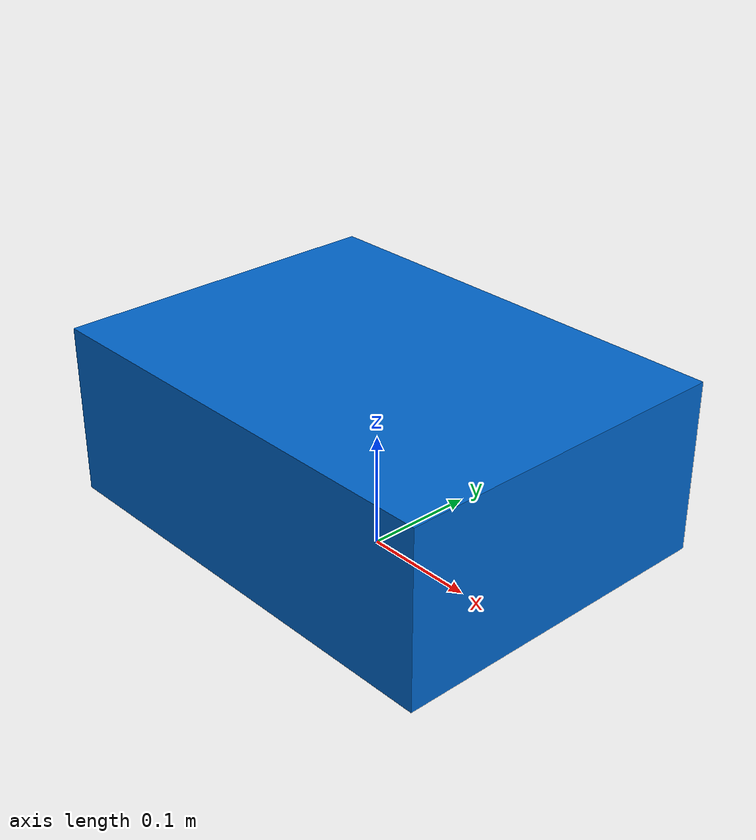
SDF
<?xml version="1.0" ?>
<sdf version="1.8">
  <model name="diff_drive_robot">
    <link name="chassis">
      <pose>0 0 0.1 0 0 0</pose>
      <inertial>
        <mass>1.14395</mass>
        <inertia>
          <ixx>0.095329</ixx>
          <ixy>0</ixy>
          <ixz>0</ixz>
          <iyy>0.381317</iyy>
          <iyz>0</iyz>
          <izz>0.476646</izz>
        </inertia>
      </inertial>
      <visual name="visual">
        <geometry>
          <box>
            <size>0.4 0.3 0.15</size>
          </box>
        </geometry>
        <material>
          <ambient>0.0 0.4 0.8 1</ambient>
          <diffuse>0.0 0.4 0.8 1</diffuse>
        </material>
      </visual>
      <collision name="collision">
        <geometry>
          <box>
            <size>0.4 0.3 0.15</size>
          </box>
        </geometry>
      </collision>

      <!-- Ray / LiDAR Sensor -->
      <sensor name="lidar_sensor" type="gpu_ray">
        <pose>0.2 0 0.1 0 0 0</pose>
        <ray>
          <scan>
            <horizontal>
              <samples>640</samples>
              <resolution>1</resolution>
              <min_angle>-1.396263</min_angle>
              <max_angle>1.396263</max_angle>
            </horizontal>
          </scan>
          <range>
            <min>0.08</min>
            <max>10.0</max>
            <resolution>0.01</resolution>
          </range>
        </ray>
        <always_on>1</always_on>
        <update_rate>30</update_rate>
        <visualize>true</visualize>
        <topic>/scan</topic>
      </sensor>
    </link>
  </model>
</sdf>
